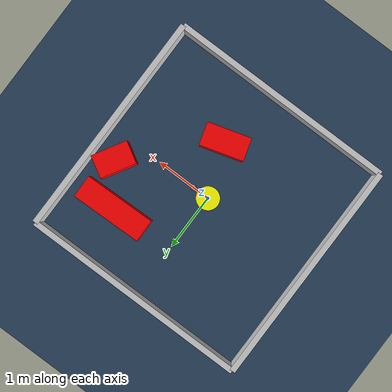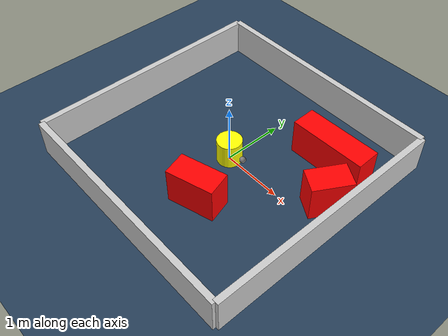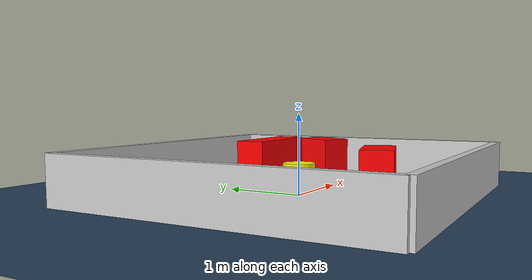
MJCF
<?xml version="1.0" ?>
<mujoco model="generated_environment">
  <option timestep="0.01" integrator="RK4" cone="elliptic"/>
  <default>
    <geom density="1"/>
  </default>
  <asset>
    <texture builtin="gradient" height="3072" rgb1="0.3 0.5 0.7" rgb2="0 0 0" type="skybox" width="512"/>
    <texture builtin="checker" height="300" mark="edge" markrgb="0.8 0.8 0.8" name="groundplane" rgb1="0.2 0.3 0.4" rgb2="0.1 0.2 0.3" type="2d" width="300"/>
    <material name="groundplane" reflectance="0.2" texrepeat="5 5" texture="groundplane" texuniform="true"/>
    <material name="robot" rgba="0.0 1.0 0.0 1"/>
  </asset>
  <worldbody>
    <light dir="0 0 -1" directional="true" pos="0 0 1.5"/>
    <geom condim="4" friction="1.0 0.005 0.001" material="groundplane" name="floor" size="0 0 0.05" type="plane"/>
    <body name="walls">
      <geom name="wall_1" condim="4" pos="-2.0 0.0 0.3" rgba="0.800000011920929 0.800000011920929 0.800000011920929 1.0" size="0.05 2.0 0.3" type="box"/>
      <geom name="wall_2" condim="4" pos="2.0 0.0 0.3" rgba="0.800000011920929 0.800000011920929 0.800000011920929 1.0" size="0.05 2.0 0.3" type="box"/>
      <geom name="wall_3" condim="4" pos="0.0 -2.0 0.3" rgba="0.800000011920929 0.800000011920929 0.800000011920929 1.0" size="2.0 0.05 0.3" type="box"/>
      <geom name="wall_4" condim="4" pos="0.0 2.0 0.3" rgba="0.800000011920929 0.800000011920929 0.800000011920929 1.0" size="2.0 0.05 0.3" type="box"/>
    </body>
    <body name="robot">
      <joint name="joint_x" type="slide" pos="0 0 0" axis="1 0 0"/>
      <joint name="joint_y" type="slide" pos="0 0 0" axis="0 1 0"/>
      <geom name="robot" type="sphere" pos="0.3 0.0 0.2" size="0.05" mass="5." friction="1.0 0.005 0.0001" condim="4" rgba="0.5 0.5 0.5 1.0"/>
      <site name="sensor_ball"/>
    </body>
    <body name="obstacle_movable_1">
      <geom name="obstacle_movable_1" condim="4" pos="0.0 0.0 0.2" euler="0 0 0.0" friction="1.0 0.005 0.001" rgba="1.0 1.0 0.0 1.0" size="0.2 0.2 0.0" type="cylinder" mass="0.1"/>
      <joint type="free"/>
    </body>
    <body name="obstacle_2_static">
      <geom name="obstacle_2_static" condim="4" pos="0.3282596092840322 -0.9058934950016599 0.3" euler="0 0 196.50491270177406" friction="1.0 0.005 0.001" rgba="1 0 0 1" size="0.3829170677427233 0.2 0.3" type="box"/>
    </body>
    <body name="obstacle_3_static">
      <geom name="obstacle_3_static" condim="4" pos="1.1328655656743603 1.0614547754119974 0.3" euler="0 0 1.2508452505716106" friction="1.0 0.005 0.001" rgba="1 0 0 1" size="0.6241266121936737 0.2 0.3" type="box"/>
    </body>
    <body name="obstacle_4_static">
      <geom name="obstacle_4_static" condim="4" pos="1.6001938667734792 0.4167713719276993 0.3" euler="0 0 59.807055564817986" friction="1.0 0.005 0.001" rgba="1 0 0 1" size="0.3162403462679714 0.2 0.3" type="box"/>
    </body>
  </worldbody>
  <actuator>
    <motor name="actuator_x" joint="joint_x" gear="1" ctrlrange="-1 1"/>
    <motor name="actuator_y" joint="joint_y" gear="1" ctrlrange="-1 1"/>
  </actuator>
</mujoco>
